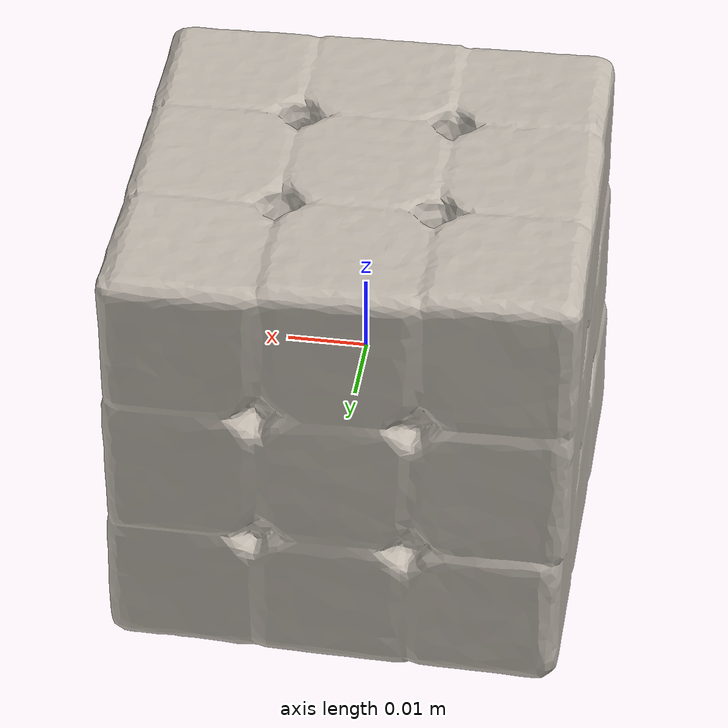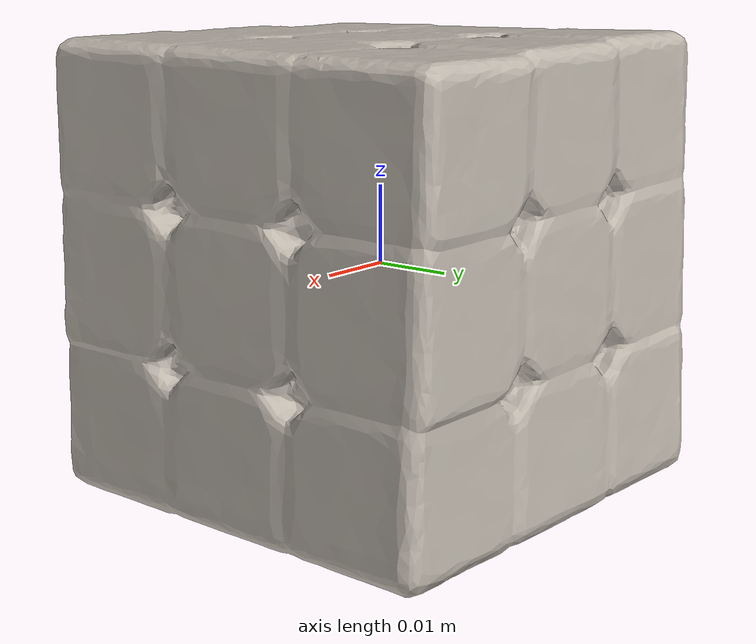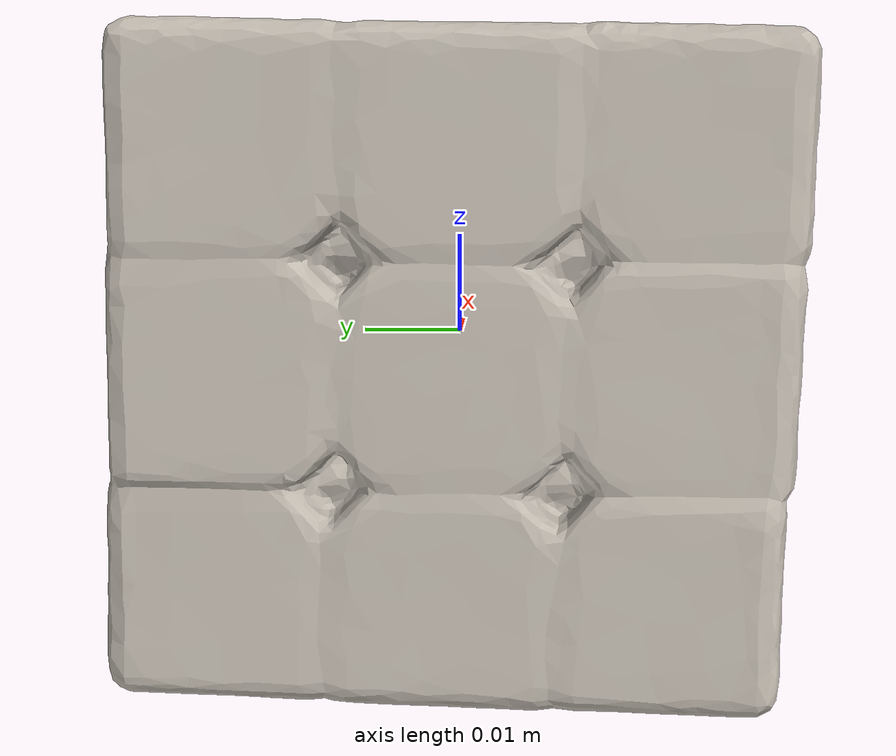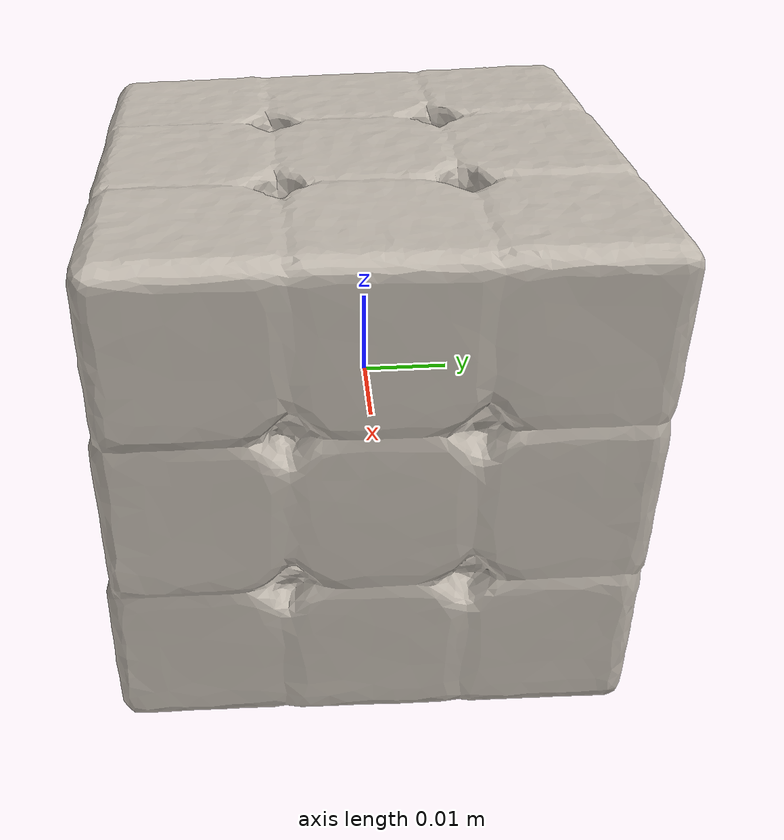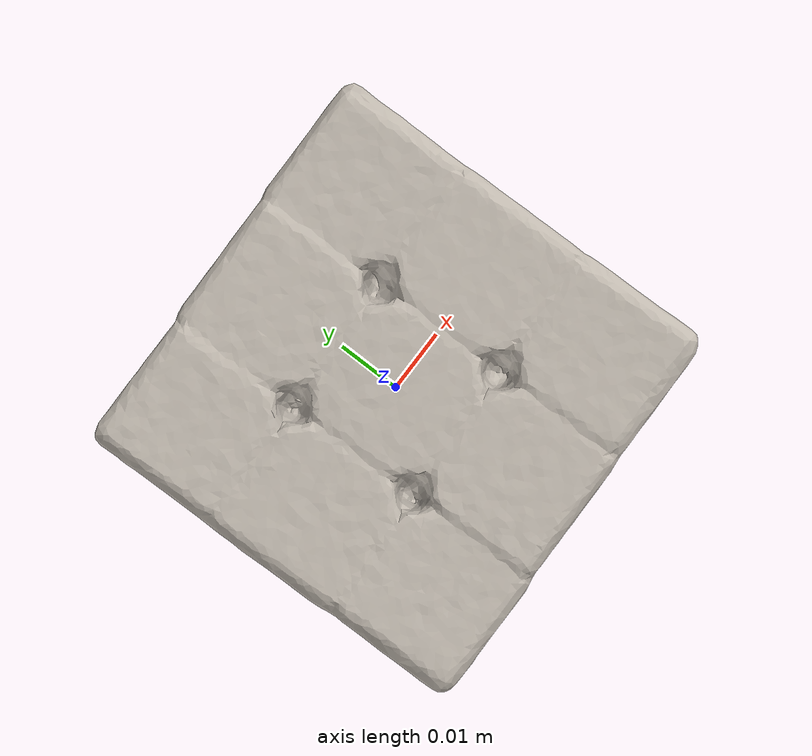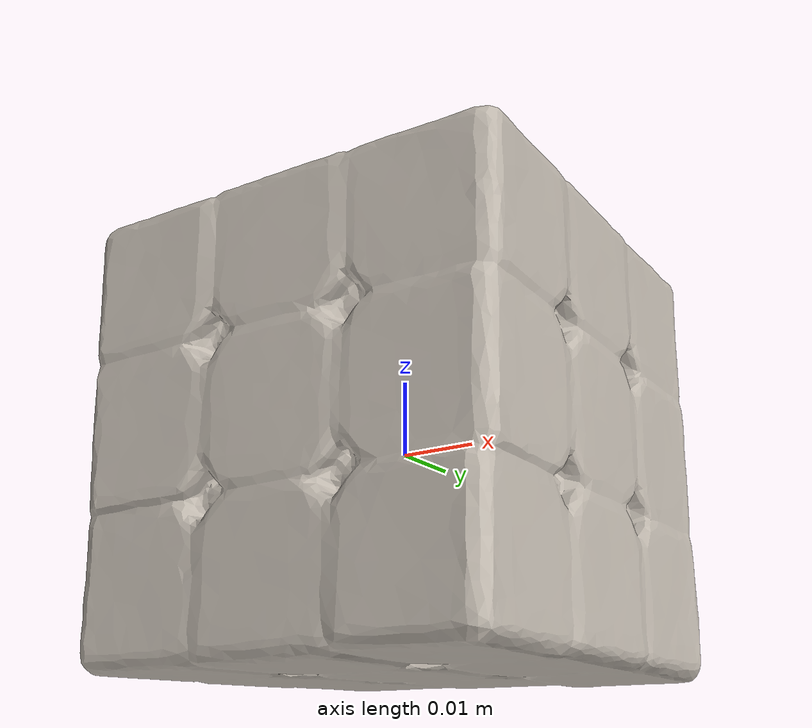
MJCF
<mujoco model="rubiks_cube">
  <default>
    <default class="visual">
      <geom group="1" type="mesh" contype="0" conaffinity="0"/>
    </default>
    <default class="collision">
      <geom group="0" type="mesh"/>
    </default>
  </default>
  <asset>
    <texture type="2d" name="rubiks_cube" file="rubiks_cube.png"/>
    <material name="rubiks_cube" texture="rubiks_cube" specular="0.4000000000000001" shininess="0.001"/>
    <mesh name="rubiks_cube" file="rubiks_cube.obj"/>
  </asset>
  <worldbody>
    <body>
    <body name="object">
      <geom material="rubiks_cube" mesh="rubiks_cube" class="visual"/>
      <geom mesh="rubiks_cube" class="collision"/>
    </body>
      <site rgba="0 0 0 0" size="0.005" pos="0 0 -0.04" name="bottom_site" />
      <site rgba="0 0 0 0" size="0.005" pos="0 0 0.04" name="top_site" />
      <site rgba="0 0 0 0" size="0.005" pos="0.005 0.005 0" name="horizontal_radius_site" />
   </body>
  </worldbody>
</mujoco>
